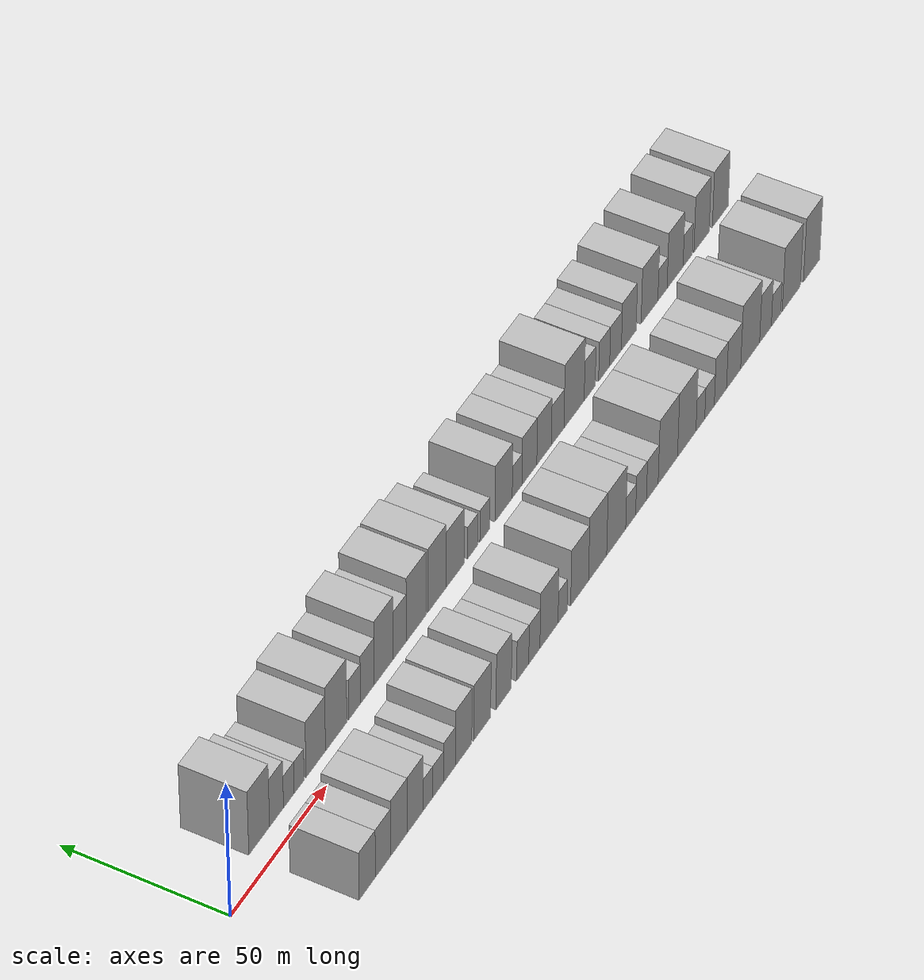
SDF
<sdf version="1.6">
 <world name="default">
  <scene>
   <sky><clouds><speed>12</speed></clouds></sky>
   <ambient>0.4 0.4 0.4 1</ambient>
   <background>0.7 0.7 0.7 1</background>
   <shadows>1</shadows>
  </scene>
  <gravity>0 0 -9.8066</gravity>
  <magnetic_field>6e-06 2.3e-05 -4.2e-05</magnetic_field>
  <physics default="0" name="default_physics" type="ode">
   <ode>
    <solver>
     <type>quick</type>
     <iters>10</iters>
     <sor>1.0</sor>
     <use_dynamic_moi_rescaling>0</use_dynamic_moi_rescaling>
    </solver>
    <constraints>
     <cfm>0</cfm>
     <erp>0.2</erp>
     <contact_max_correcting_vel>100</contact_max_correcting_vel>
     <contact_surface_layer>0.001</contact_surface_layer>
    </constraints>
   </ode>
   <max_step_size>0.004</max_step_size>
   <real_time_factor>1</real_time_factor>
   <real_time_update_rate>250</real_time_update_rate>
  </physics>
  <light name="sun" type="directional">
   <pose>0 0 10 0 0 0</pose>
   <diffuse>0.8 0.8 0.8 1</diffuse>
   <specular>0.2 0.2 0.2 1</specular>
   <attenuation>
    <range>1000</range>
    <constant>0.9</constant>
    <linear>0.01</linear>
    <quadratic>0.001</quadratic>
   </attenuation>
   <direction>-0.5 0.1 -0.9</direction>
  </light>
  <model name="building_1">
   <static>1</static>
   <pose>25.4195 16.0000 0 0.000000 0.000000 1.570796</pose>
   <link name="link">
    <pose>0 0 12.00 0 0 0</pose>
    <collision name="collision"><geometry><box><size>20.0000 10.8389 24.0000</size></box></geometry></collision>
    <visual name="visual">
     <cast_shadows>0</cast_shadows>
     <geometry><box><size>20.0000 10.8389 24.0000</size></box></geometry>
     <material>
      <script>
       <uri>model://HANNAS_wall/materials/scripts</uri>
       <uri>model://HANNAS_wall/materials/textures</uri>
       <name>vrc/HANNAS_wall</name>
      </script>
     </material>
    </visual>
   </link>
  </model>
  <model name="building_2">
   <static>1</static>
   <pose>34.4876 16.0000 0 0.000000 0.000000 1.570796</pose>
   <link name="link">
    <pose>0 0 9.00 0 0 0</pose>
    <collision name="collision"><geometry><box><size>20.0000 7.2974 18.0000</size></box></geometry></collision>
    <visual name="visual">
     <cast_shadows>0</cast_shadows>
     <geometry><box><size>20.0000 7.2974 18.0000</size></box></geometry>
     <material>
      <script>
       <uri>model://HANNAS_wall/materials/scripts</uri>
       <uri>model://HANNAS_wall/materials/textures</uri>
       <name>vrc/HANNAS_wall</name>
      </script>
     </material>
    </visual>
   </link>
  </model>
  <model name="building_3">
   <static>1</static>
   <pose>40.9584 16.0000 0 0.000000 0.000000 1.570796</pose>
   <link name="link">
    <pose>0 0 6.00 0 0 0</pose>
    <collision name="collision"><geometry><box><size>20.0000 5.6441 12.0000</size></box></geometry></collision>
    <visual name="visual">
     <cast_shadows>0</cast_shadows>
     <geometry><box><size>20.0000 5.6441 12.0000</size></box></geometry>
     <material>
      <script>
       <uri>model://HANNAS_wall/materials/scripts</uri>
       <uri>model://HANNAS_wall/materials/textures</uri>
       <name>vrc/HANNAS_wall</name>
      </script>
     </material>
    </visual>
   </link>
  </model>
  <model name="building_4">
   <static>1</static>
   <pose>46.4162 16.0000 0 0.000000 0.000000 1.570796</pose>
   <link name="link">
    <pose>0 0 6.00 0 0 0</pose>
    <collision name="collision"><geometry><box><size>20.0000 5.2715 12.0000</size></box></geometry></collision>
    <visual name="visual">
     <cast_shadows>0</cast_shadows>
     <geometry><box><size>20.0000 5.2715 12.0000</size></box></geometry>
     <material>
      <script>
       <uri>model://HANNAS_wall/materials/scripts</uri>
       <uri>model://HANNAS_wall/materials/textures</uri>
       <name>vrc/HANNAS_wall</name>
      </script>
     </material>
    </visual>
   </link>
  </model>
  <model name="building_5">
   <static>1</static>
   <pose>55.2350 16.0000 0 0.000000 0.000000 1.570796</pose>
   <link name="link">
    <pose>0 0 10.50 0 0 0</pose>
    <collision name="collision"><geometry><box><size>20.0000 10.3663 21.0000</size></box></geometry></collision>
    <visual name="visual">
     <cast_shadows>0</cast_shadows>
     <geometry><box><size>20.0000 10.3663 21.0000</size></box></geometry>
     <material>
      <script>
       <uri>model://HANNAS_wall/materials/scripts</uri>
       <uri>model://HANNAS_wall/materials/textures</uri>
       <name>vrc/HANNAS_wall</name>
      </script>
     </material>
    </visual>
   </link>
  </model>
  <model name="building_6">
   <static>1</static>
   <pose>66.1503 16.0000 0 0.000000 0.000000 1.570796</pose>
   <link name="link">
    <pose>0 0 12.00 0 0 0</pose>
    <collision name="collision"><geometry><box><size>20.0000 11.4643 24.0000</size></box></geometry></collision>
    <visual name="visual">
     <cast_shadows>0</cast_shadows>
     <geometry><box><size>20.0000 11.4643 24.0000</size></box></geometry>
     <material>
      <script>
       <uri>model://HANNAS_wall/materials/scripts</uri>
       <uri>model://HANNAS_wall/materials/textures</uri>
       <name>vrc/HANNAS_wall</name>
      </script>
     </material>
    </visual>
   </link>
  </model>
  <model name="building_7">
   <static>1</static>
   <pose>76.0640 16.0000 0 0.000000 0.000000 1.570796</pose>
   <link name="link">
    <pose>0 0 7.50 0 0 0</pose>
    <collision name="collision"><geometry><box><size>20.0000 6.3631 15.0000</size></box></geometry></collision>
    <visual name="visual">
     <cast_shadows>0</cast_shadows>
     <geometry><box><size>20.0000 6.3631 15.0000</size></box></geometry>
     <material>
      <script>
       <uri>model://HANNAS_wall/materials/scripts</uri>
       <uri>model://HANNAS_wall/materials/textures</uri>
       <name>vrc/HANNAS_wall</name>
      </script>
     </material>
    </visual>
   </link>
  </model>
  <model name="building_8">
   <static>1</static>
   <pose>82.9743 16.0000 0 0.000000 0.000000 1.570796</pose>
   <link name="link">
    <pose>0 0 9.00 0 0 0</pose>
    <collision name="collision"><geometry><box><size>20.0000 7.4576 18.0000</size></box></geometry></collision>
    <visual name="visual">
     <cast_shadows>0</cast_shadows>
     <geometry><box><size>20.0000 7.4576 18.0000</size></box></geometry>
     <material>
      <script>
       <uri>model://HANNAS_wall/materials/scripts</uri>
       <uri>model://HANNAS_wall/materials/textures</uri>
       <name>vrc/HANNAS_wall</name>
      </script>
     </material>
    </visual>
   </link>
  </model>
  <model name="building_9">
   <static>1</static>
   <pose>91.8453 16.0000 0 0.000000 0.000000 1.570796</pose>
   <link name="link">
    <pose>0 0 12.00 0 0 0</pose>
    <collision name="collision"><geometry><box><size>20.0000 10.2842 24.0000</size></box></geometry></collision>
    <visual name="visual">
     <cast_shadows>0</cast_shadows>
     <geometry><box><size>20.0000 10.2842 24.0000</size></box></geometry>
     <material>
      <script>
       <uri>model://HANNAS_wall/materials/scripts</uri>
       <uri>model://HANNAS_wall/materials/textures</uri>
       <name>vrc/HANNAS_wall</name>
      </script>
     </material>
    </visual>
   </link>
  </model>
  <model name="building_10">
   <static>1</static>
   <pose>100.6256 16.0000 0 0.000000 0.000000 1.570796</pose>
   <link name="link">
    <pose>0 0 9.00 0 0 0</pose>
    <collision name="collision"><geometry><box><size>20.0000 7.2764 18.0000</size></box></geometry></collision>
    <visual name="visual">
     <cast_shadows>0</cast_shadows>
     <geometry><box><size>20.0000 7.2764 18.0000</size></box></geometry>
     <material>
      <script>
       <uri>model://HANNAS_wall/materials/scripts</uri>
       <uri>model://HANNAS_wall/materials/textures</uri>
       <name>vrc/HANNAS_wall</name>
      </script>
     </material>
    </visual>
   </link>
  </model>
  <model name="building_11">
   <static>1</static>
   <pose>109.7319 16.0000 0 0.000000 0.000000 1.570796</pose>
   <link name="link">
    <pose>0 0 12.00 0 0 0</pose>
    <collision name="collision"><geometry><box><size>20.0000 10.9363 24.0000</size></box></geometry></collision>
    <visual name="visual">
     <cast_shadows>0</cast_shadows>
     <geometry><box><size>20.0000 10.9363 24.0000</size></box></geometry>
     <material>
      <script>
       <uri>model://HANNAS_wall/materials/scripts</uri>
       <uri>model://HANNAS_wall/materials/textures</uri>
       <name>vrc/HANNAS_wall</name>
      </script>
     </material>
    </visual>
   </link>
  </model>
  <model name="building_12">
   <static>1</static>
   <pose>121.3210 16.0000 0 0.000000 0.000000 1.570796</pose>
   <link name="link">
    <pose>0 0 12.00 0 0 0</pose>
    <collision name="collision"><geometry><box><size>20.0000 10.2417 24.0000</size></box></geometry></collision>
    <visual name="visual">
     <cast_shadows>0</cast_shadows>
     <geometry><box><size>20.0000 10.2417 24.0000</size></box></geometry>
     <material>
      <script>
       <uri>model://HANNAS_wall/materials/scripts</uri>
       <uri>model://HANNAS_wall/materials/textures</uri>
       <name>vrc/HANNAS_wall</name>
      </script>
     </material>
    </visual>
   </link>
  </model>
  <model name="building_13">
   <static>1</static>
   <pose>131.4453 16.0000 0 0.000000 0.000000 1.570796</pose>
   <link name="link">
    <pose>0 0 10.50 0 0 0</pose>
    <collision name="collision"><geometry><box><size>20.0000 10.0069 21.0000</size></box></geometry></collision>
    <visual name="visual">
     <cast_shadows>0</cast_shadows>
     <geometry><box><size>20.0000 10.0069 21.0000</size></box></geometry>
     <material>
      <script>
       <uri>model://HANNAS_wall/materials/scripts</uri>
       <uri>model://HANNAS_wall/materials/textures</uri>
       <name>vrc/HANNAS_wall</name>
      </script>
     </material>
    </visual>
   </link>
  </model>
  <model name="building_14">
   <static>1</static>
   <pose>141.3800 16.0000 0 0.000000 0.000000 1.570796</pose>
   <link name="link">
    <pose>0 0 6.00 0 0 0</pose>
    <collision name="collision"><geometry><box><size>20.0000 5.8627 12.0000</size></box></geometry></collision>
    <visual name="visual">
     <cast_shadows>0</cast_shadows>
     <geometry><box><size>20.0000 5.8627 12.0000</size></box></geometry>
     <material>
      <script>
       <uri>model://HANNAS_wall/materials/scripts</uri>
       <uri>model://HANNAS_wall/materials/textures</uri>
       <name>vrc/HANNAS_wall</name>
      </script>
     </material>
    </visual>
   </link>
  </model>
  <model name="building_15">
   <static>1</static>
   <pose>148.1402 16.0000 0 0.000000 0.000000 1.570796</pose>
   <link name="link">
    <pose>0 0 6.00 0 0 0</pose>
    <collision name="collision"><geometry><box><size>20.0000 5.6575 12.0000</size></box></geometry></collision>
    <visual name="visual">
     <cast_shadows>0</cast_shadows>
     <geometry><box><size>20.0000 5.6575 12.0000</size></box></geometry>
     <material>
      <script>
       <uri>model://HANNAS_wall/materials/scripts</uri>
       <uri>model://HANNAS_wall/materials/textures</uri>
       <name>vrc/HANNAS_wall</name>
      </script>
     </material>
    </visual>
   </link>
  </model>
  <model name="building_16">
   <static>1</static>
   <pose>158.8875 16.0000 0 0.000000 0.000000 1.570796</pose>
   <link name="link">
    <pose>0 0 10.50 0 0 0</pose>
    <collision name="collision"><geometry><box><size>20.0000 9.8371 21.0000</size></box></geometry></collision>
    <visual name="visual">
     <cast_shadows>0</cast_shadows>
     <geometry><box><size>20.0000 9.8371 21.0000</size></box></geometry>
     <material>
      <script>
       <uri>model://HANNAS_wall/materials/scripts</uri>
       <uri>model://HANNAS_wall/materials/textures</uri>
       <name>vrc/HANNAS_wall</name>
      </script>
     </material>
    </visual>
   </link>
  </model>
  <model name="building_17">
   <static>1</static>
   <pose>166.5775 16.0000 0 0.000000 0.000000 1.570796</pose>
   <link name="link">
    <pose>0 0 6.00 0 0 0</pose>
    <collision name="collision"><geometry><box><size>20.0000 5.5429 12.0000</size></box></geometry></collision>
    <visual name="visual">
     <cast_shadows>0</cast_shadows>
     <geometry><box><size>20.0000 5.5429 12.0000</size></box></geometry>
     <material>
      <script>
       <uri>model://HANNAS_wall/materials/scripts</uri>
       <uri>model://HANNAS_wall/materials/textures</uri>
       <name>vrc/HANNAS_wall</name>
      </script>
     </material>
    </visual>
   </link>
  </model>
  <model name="building_18">
   <static>1</static>
   <pose>173.6655 16.0000 0 0.000000 0.000000 1.570796</pose>
   <link name="link">
    <pose>0 0 9.00 0 0 0</pose>
    <collision name="collision"><geometry><box><size>20.0000 8.6331 18.0000</size></box></geometry></collision>
    <visual name="visual">
     <cast_shadows>0</cast_shadows>
     <geometry><box><size>20.0000 8.6331 18.0000</size></box></geometry>
     <material>
      <script>
       <uri>model://HANNAS_wall/materials/scripts</uri>
       <uri>model://HANNAS_wall/materials/textures</uri>
       <name>vrc/HANNAS_wall</name>
      </script>
     </material>
    </visual>
   </link>
  </model>
  <model name="building_19">
   <static>1</static>
   <pose>182.2064 16.0000 0 0.000000 0.000000 1.570796</pose>
   <link name="link">
    <pose>0 0 9.00 0 0 0</pose>
    <collision name="collision"><geometry><box><size>20.0000 8.4489 18.0000</size></box></geometry></collision>
    <visual name="visual">
     <cast_shadows>0</cast_shadows>
     <geometry><box><size>20.0000 8.4489 18.0000</size></box></geometry>
     <material>
      <script>
       <uri>model://HANNAS_wall/materials/scripts</uri>
       <uri>model://HANNAS_wall/materials/textures</uri>
       <name>vrc/HANNAS_wall</name>
      </script>
     </material>
    </visual>
   </link>
  </model>
  <model name="building_20">
   <static>1</static>
   <pose>190.1154 16.0000 0 0.000000 0.000000 1.570796</pose>
   <link name="link">
    <pose>0 0 7.50 0 0 0</pose>
    <collision name="collision"><geometry><box><size>20.0000 7.3691 15.0000</size></box></geometry></collision>
    <visual name="visual">
     <cast_shadows>0</cast_shadows>
     <geometry><box><size>20.0000 7.3691 15.0000</size></box></geometry>
     <material>
      <script>
       <uri>model://HANNAS_wall/materials/scripts</uri>
       <uri>model://HANNAS_wall/materials/textures</uri>
       <name>vrc/HANNAS_wall</name>
      </script>
     </material>
    </visual>
   </link>
  </model>
  <model name="building_21">
   <static>1</static>
   <pose>199.7422 16.0000 0 0.000000 0.000000 1.570796</pose>
   <link name="link">
    <pose>0 0 12.00 0 0 0</pose>
    <collision name="collision"><geometry><box><size>20.0000 11.8844 24.0000</size></box></geometry></collision>
    <visual name="visual">
     <cast_shadows>0</cast_shadows>
     <geometry><box><size>20.0000 11.8844 24.0000</size></box></geometry>
     <material>
      <script>
       <uri>model://HANNAS_wall/materials/scripts</uri>
       <uri>model://HANNAS_wall/materials/textures</uri>
       <name>vrc/HANNAS_wall</name>
      </script>
     </material>
    </visual>
   </link>
  </model>
  <model name="building_22">
   <static>1</static>
   <pose>208.9534 16.0000 0 0.000000 0.000000 1.570796</pose>
   <link name="link">
    <pose>0 0 7.50 0 0 0</pose>
    <collision name="collision"><geometry><box><size>20.0000 6.5379 15.0000</size></box></geometry></collision>
    <visual name="visual">
     <cast_shadows>0</cast_shadows>
     <geometry><box><size>20.0000 6.5379 15.0000</size></box></geometry>
     <material>
      <script>
       <uri>model://HANNAS_wall/materials/scripts</uri>
       <uri>model://HANNAS_wall/materials/textures</uri>
       <name>vrc/HANNAS_wall</name>
      </script>
     </material>
    </visual>
   </link>
  </model>
  <model name="building_23">
   <static>1</static>
   <pose>217.5202 16.0000 0 0.000000 0.000000 1.570796</pose>
   <link name="link">
    <pose>0 0 7.50 0 0 0</pose>
    <collision name="collision"><geometry><box><size>20.0000 6.5957 15.0000</size></box></geometry></collision>
    <visual name="visual">
     <cast_shadows>0</cast_shadows>
     <geometry><box><size>20.0000 6.5957 15.0000</size></box></geometry>
     <material>
      <script>
       <uri>model://HANNAS_wall/materials/scripts</uri>
       <uri>model://HANNAS_wall/materials/textures</uri>
       <name>vrc/HANNAS_wall</name>
      </script>
     </material>
    </visual>
   </link>
  </model>
  <model name="building_24">
   <static>1</static>
   <pose>224.3153 16.0000 0 0.000000 0.000000 1.570796</pose>
   <link name="link">
    <pose>0 0 7.50 0 0 0</pose>
    <collision name="collision"><geometry><box><size>20.0000 6.9945 15.0000</size></box></geometry></collision>
    <visual name="visual">
     <cast_shadows>0</cast_shadows>
     <geometry><box><size>20.0000 6.9945 15.0000</size></box></geometry>
     <material>
      <script>
       <uri>model://HANNAS_wall/materials/scripts</uri>
       <uri>model://HANNAS_wall/materials/textures</uri>
       <name>vrc/HANNAS_wall</name>
      </script>
     </material>
    </visual>
   </link>
  </model>
  <model name="building_25">
   <static>1</static>
   <pose>232.2512 16.0000 0 0.000000 0.000000 1.570796</pose>
   <link name="link">
    <pose>0 0 9.00 0 0 0</pose>
    <collision name="collision"><geometry><box><size>20.0000 8.8774 18.0000</size></box></geometry></collision>
    <visual name="visual">
     <cast_shadows>0</cast_shadows>
     <geometry><box><size>20.0000 8.8774 18.0000</size></box></geometry>
     <material>
      <script>
       <uri>model://HANNAS_wall/materials/scripts</uri>
       <uri>model://HANNAS_wall/materials/textures</uri>
       <name>vrc/HANNAS_wall</name>
      </script>
     </material>
    </visual>
   </link>
  </model>
  <model name="building_26">
   <static>1</static>
   <pose>244.7805 16.0000 0 0.000000 0.000000 1.570796</pose>
   <link name="link">
    <pose>0 0 10.50 0 0 0</pose>
    <collision name="collision"><geometry><box><size>20.0000 10.1812 21.0000</size></box></geometry></collision>
    <visual name="visual">
     <cast_shadows>0</cast_shadows>
     <geometry><box><size>20.0000 10.1812 21.0000</size></box></geometry>
     <material>
      <script>
       <uri>model://HANNAS_wall/materials/scripts</uri>
       <uri>model://HANNAS_wall/materials/textures</uri>
       <name>vrc/HANNAS_wall</name>
      </script>
     </material>
    </visual>
   </link>
  </model>
  <model name="building_27">
   <static>1</static>
   <pose>252.6764 16.0000 0 0.000000 0.000000 1.570796</pose>
   <link name="link">
    <pose>0 0 6.00 0 0 0</pose>
    <collision name="collision"><geometry><box><size>20.0000 5.6105 12.0000</size></box></geometry></collision>
    <visual name="visual">
     <cast_shadows>0</cast_shadows>
     <geometry><box><size>20.0000 5.6105 12.0000</size></box></geometry>
     <material>
      <script>
       <uri>model://HANNAS_wall/materials/scripts</uri>
       <uri>model://HANNAS_wall/materials/textures</uri>
       <name>vrc/HANNAS_wall</name>
      </script>
     </material>
    </visual>
   </link>
  </model>
  <model name="building_28">
   <static>1</static>
   <pose>260.3763 16.0000 0 0.000000 0.000000 1.570796</pose>
   <link name="link">
    <pose>0 0 10.50 0 0 0</pose>
    <collision name="collision"><geometry><box><size>20.0000 9.7892 21.0000</size></box></geometry></collision>
    <visual name="visual">
     <cast_shadows>0</cast_shadows>
     <geometry><box><size>20.0000 9.7892 21.0000</size></box></geometry>
     <material>
      <script>
       <uri>model://HANNAS_wall/materials/scripts</uri>
       <uri>model://HANNAS_wall/materials/textures</uri>
       <name>vrc/HANNAS_wall</name>
      </script>
     </material>
    </visual>
   </link>
  </model>
  <model name="building_29">
   <static>1</static>
   <pose>268.1109 16.0000 0 0.000000 0.000000 1.570796</pose>
   <link name="link">
    <pose>0 0 6.00 0 0 0</pose>
    <collision name="collision"><geometry><box><size>20.0000 5.6800 12.0000</size></box></geometry></collision>
    <visual name="visual">
     <cast_shadows>0</cast_shadows>
     <geometry><box><size>20.0000 5.6800 12.0000</size></box></geometry>
     <material>
      <script>
       <uri>model://HANNAS_wall/materials/scripts</uri>
       <uri>model://HANNAS_wall/materials/textures</uri>
       <name>vrc/HANNAS_wall</name>
      </script>
     </material>
    </visual>
   </link>
  </model>
  <model name="building_30">
   <static>1</static>
   <pose>276.6648 16.0000 0 0.000000 0.000000 1.570796</pose>
   <link name="link">
    <pose>0 0 10.50 0 0 0</pose>
    <collision name="collision"><geometry><box><size>20.0000 9.4278 21.0000</size></box></geometry></collision>
    <visual name="visual">
     <cast_shadows>0</cast_shadows>
     <geometry><box><size>20.0000 9.4278 21.0000</size></box></geometry>
     <material>
      <script>
       <uri>model://HANNAS_wall/materials/scripts</uri>
       <uri>model://HANNAS_wall/materials/textures</uri>
       <name>vrc/HANNAS_wall</name>
      </script>
     </material>
    </visual>
   </link>
  </model>
  <model name="building_31">
   <static>1</static>
   <pose>288.3045 16.0000 0 0.000000 0.000000 1.570796</pose>
   <link name="link">
    <pose>0 0 10.50 0 0 0</pose>
    <collision name="collision"><geometry><box><size>20.0000 9.8517 21.0000</size></box></geometry></collision>
    <visual name="visual">
     <cast_shadows>0</cast_shadows>
     <geometry><box><size>20.0000 9.8517 21.0000</size></box></geometry>
     <material>
      <script>
       <uri>model://HANNAS_wall/materials/scripts</uri>
       <uri>model://HANNAS_wall/materials/textures</uri>
       <name>vrc/HANNAS_wall</name>
      </script>
     </material>
    </visual>
   </link>
  </model>
  <model name="building_32">
   <static>1</static>
   <pose>24.3452 -16.0000 0 0.000000 0.000000 1.570796</pose>
   <link name="link">
    <pose>0 0 9.00 0 0 0</pose>
    <collision name="collision"><geometry><box><size>20.0000 8.6905 18.0000</size></box></geometry></collision>
    <visual name="visual">
     <cast_shadows>0</cast_shadows>
     <geometry><box><size>20.0000 8.6905 18.0000</size></box></geometry>
     <material>
      <script>
       <uri>model://HANNAS_wall/materials/scripts</uri>
       <uri>model://HANNAS_wall/materials/textures</uri>
       <name>vrc/HANNAS_wall</name>
      </script>
     </material>
    </visual>
   </link>
  </model>
  <model name="building_33">
   <static>1</static>
   <pose>32.7283 -16.0000 0 0.000000 0.000000 1.570796</pose>
   <link name="link">
    <pose>0 0 9.00 0 0 0</pose>
    <collision name="collision"><geometry><box><size>20.0000 8.0757 18.0000</size></box></geometry></collision>
    <visual name="visual">
     <cast_shadows>0</cast_shadows>
     <geometry><box><size>20.0000 8.0757 18.0000</size></box></geometry>
     <material>
      <script>
       <uri>model://HANNAS_wall/materials/scripts</uri>
       <uri>model://HANNAS_wall/materials/textures</uri>
       <name>vrc/HANNAS_wall</name>
      </script>
     </material>
    </visual>
   </link>
  </model>
  <model name="building_34">
   <static>1</static>
   <pose>41.2370 -16.0000 0 0.000000 0.000000 1.570796</pose>
   <link name="link">
    <pose>0 0 10.50 0 0 0</pose>
    <collision name="collision"><geometry><box><size>20.0000 8.9416 21.0000</size></box></geometry></collision>
    <visual name="visual">
     <cast_shadows>0</cast_shadows>
     <geometry><box><size>20.0000 8.9416 21.0000</size></box></geometry>
     <material>
      <script>
       <uri>model://HANNAS_wall/materials/scripts</uri>
       <uri>model://HANNAS_wall/materials/textures</uri>
       <name>vrc/HANNAS_wall</name>
      </script>
     </material>
    </visual>
   </link>
  </model>
  <model name="building_35">
   <static>1</static>
   <pose>50.0134 -16.0000 0 0.000000 0.000000 1.570796</pose>
   <link name="link">
    <pose>0 0 10.50 0 0 0</pose>
    <collision name="collision"><geometry><box><size>20.0000 8.6113 21.0000</size></box></geometry></collision>
    <visual name="visual">
     <cast_shadows>0</cast_shadows>
     <geometry><box><size>20.0000 8.6113 21.0000</size></box></geometry>
     <material>
      <script>
       <uri>model://HANNAS_wall/materials/scripts</uri>
       <uri>model://HANNAS_wall/materials/textures</uri>
       <name>vrc/HANNAS_wall</name>
      </script>
     </material>
    </visual>
   </link>
  </model>
  <model name="building_36">
   <static>1</static>
   <pose>56.8525 -16.0000 0 0.000000 0.000000 1.570796</pose>
   <link name="link">
    <pose>0 0 6.00 0 0 0</pose>
    <collision name="collision"><geometry><box><size>20.0000 5.0669 12.0000</size></box></geometry></collision>
    <visual name="visual">
     <cast_shadows>0</cast_shadows>
     <geometry><box><size>20.0000 5.0669 12.0000</size></box></geometry>
     <material>
      <script>
       <uri>model://HANNAS_wall/materials/scripts</uri>
       <uri>model://HANNAS_wall/materials/textures</uri>
       <name>vrc/HANNAS_wall</name>
      </script>
     </material>
    </visual>
   </link>
  </model>
  <model name="building_37">
   <static>1</static>
   <pose>62.3425 -16.0000 0 0.000000 0.000000 1.570796</pose>
   <link name="link">
    <pose>0 0 6.00 0 0 0</pose>
    <collision name="collision"><geometry><box><size>20.0000 5.9130 12.0000</size></box></geometry></collision>
    <visual name="visual">
     <cast_shadows>0</cast_shadows>
     <geometry><box><size>20.0000 5.9130 12.0000</size></box></geometry>
     <material>
      <script>
       <uri>model://HANNAS_wall/materials/scripts</uri>
       <uri>model://HANNAS_wall/materials/textures</uri>
       <name>vrc/HANNAS_wall</name>
      </script>
     </material>
    </visual>
   </link>
  </model>
  <model name="building_38">
   <static>1</static>
   <pose>68.4736 -16.0000 0 0.000000 0.000000 1.570796</pose>
   <link name="link">
    <pose>0 0 7.50 0 0 0</pose>
    <collision name="collision"><geometry><box><size>20.0000 6.3492 15.0000</size></box></geometry></collision>
    <visual name="visual">
     <cast_shadows>0</cast_shadows>
     <geometry><box><size>20.0000 6.3492 15.0000</size></box></geometry>
     <material>
      <script>
       <uri>model://HANNAS_wall/materials/scripts</uri>
       <uri>model://HANNAS_wall/materials/textures</uri>
       <name>vrc/HANNAS_wall</name>
      </script>
     </material>
    </visual>
   </link>
  </model>
  <model name="building_39">
   <static>1</static>
   <pose>76.1599 -16.0000 0 0.000000 0.000000 1.570796</pose>
   <link name="link">
    <pose>0 0 10.50 0 0 0</pose>
    <collision name="collision"><geometry><box><size>20.0000 9.0234 21.0000</size></box></geometry></collision>
    <visual name="visual">
     <cast_shadows>0</cast_shadows>
     <geometry><box><size>20.0000 9.0234 21.0000</size></box></geometry>
     <material>
      <script>
       <uri>model://HANNAS_wall/materials/scripts</uri>
       <uri>model://HANNAS_wall/materials/textures</uri>
       <name>vrc/HANNAS_wall</name>
      </script>
     </material>
    </visual>
   </link>
  </model>
  <model name="building_40">
   <static>1</static>
   <pose>86.3869 -16.0000 0 0.000000 0.000000 1.570796</pose>
   <link name="link">
    <pose>0 0 10.50 0 0 0</pose>
    <collision name="collision"><geometry><box><size>20.0000 9.4306 21.0000</size></box></geometry></collision>
    <visual name="visual">
     <cast_shadows>0</cast_shadows>
     <geometry><box><size>20.0000 9.4306 21.0000</size></box></geometry>
     <material>
      <script>
       <uri>model://HANNAS_wall/materials/scripts</uri>
       <uri>model://HANNAS_wall/materials/textures</uri>
       <name>vrc/HANNAS_wall</name>
      </script>
     </material>
    </visual>
   </link>
  </model>
  <model name="building_41">
   <static>1</static>
   <pose>98.3394 -16.0000 0 0.000000 0.000000 1.570796</pose>
   <link name="link">
    <pose>0 0 10.50 0 0 0</pose>
    <collision name="collision"><geometry><box><size>20.0000 8.4745 21.0000</size></box></geometry></collision>
    <visual name="visual">
     <cast_shadows>0</cast_shadows>
     <geometry><box><size>20.0000 8.4745 21.0000</size></box></geometry>
     <material>
      <script>
       <uri>model://HANNAS_wall/materials/scripts</uri>
       <uri>model://HANNAS_wall/materials/textures</uri>
       <name>vrc/HANNAS_wall</name>
      </script>
     </material>
    </visual>
   </link>
  </model>
  <model name="building_42">
   <static>1</static>
   <pose>108.9622 -16.0000 0 0.000000 0.000000 1.570796</pose>
   <link name="link">
    <pose>0 0 7.50 0 0 0</pose>
    <collision name="collision"><geometry><box><size>20.0000 6.7711 15.0000</size></box></geometry></collision>
    <visual name="visual">
     <cast_shadows>0</cast_shadows>
     <geometry><box><size>20.0000 6.7711 15.0000</size></box></geometry>
     <material>
      <script>
       <uri>model://HANNAS_wall/materials/scripts</uri>
       <uri>model://HANNAS_wall/materials/textures</uri>
       <name>vrc/HANNAS_wall</name>
      </script>
     </material>
    </visual>
   </link>
  </model>
  <model name="building_43">
   <static>1</static>
   <pose>115.4851 -16.0000 0 0.000000 0.000000 1.570796</pose>
   <link name="link">
    <pose>0 0 7.50 0 0 0</pose>
    <collision name="collision"><geometry><box><size>20.0000 6.2745 15.0000</size></box></geometry></collision>
    <visual name="visual">
     <cast_shadows>0</cast_shadows>
     <geometry><box><size>20.0000 6.2745 15.0000</size></box></geometry>
     <material>
      <script>
       <uri>model://HANNAS_wall/materials/scripts</uri>
       <uri>model://HANNAS_wall/materials/textures</uri>
       <name>vrc/HANNAS_wall</name>
      </script>
     </material>
    </visual>
   </link>
  </model>
  <model name="building_44">
   <static>1</static>
   <pose>123.7631 -16.0000 0 0.000000 0.000000 1.570796</pose>
   <link name="link">
    <pose>0 0 10.50 0 0 0</pose>
    <collision name="collision"><geometry><box><size>20.0000 10.2815 21.0000</size></box></geometry></collision>
    <visual name="visual">
     <cast_shadows>0</cast_shadows>
     <geometry><box><size>20.0000 10.2815 21.0000</size></box></geometry>
     <material>
      <script>
       <uri>model://HANNAS_wall/materials/scripts</uri>
       <uri>model://HANNAS_wall/materials/textures</uri>
       <name>vrc/HANNAS_wall</name>
      </script>
     </material>
    </visual>
   </link>
  </model>
  <model name="building_45">
   <static>1</static>
   <pose>131.5101 -16.0000 0 0.000000 0.000000 1.570796</pose>
   <link name="link">
    <pose>0 0 6.00 0 0 0</pose>
    <collision name="collision"><geometry><box><size>20.0000 5.2125 12.0000</size></box></geometry></collision>
    <visual name="visual">
     <cast_shadows>0</cast_shadows>
     <geometry><box><size>20.0000 5.2125 12.0000</size></box></geometry>
     <material>
      <script>
       <uri>model://HANNAS_wall/materials/scripts</uri>
       <uri>model://HANNAS_wall/materials/textures</uri>
       <name>vrc/HANNAS_wall</name>
      </script>
     </material>
    </visual>
   </link>
  </model>
  <model name="building_46">
   <static>1</static>
   <pose>141.2276 -16.0000 0 0.000000 0.000000 1.570796</pose>
   <link name="link">
    <pose>0 0 10.50 0 0 0</pose>
    <collision name="collision"><geometry><box><size>20.0000 10.2225 21.0000</size></box></geometry></collision>
    <visual name="visual">
     <cast_shadows>0</cast_shadows>
     <geometry><box><size>20.0000 10.2225 21.0000</size></box></geometry>
     <material>
      <script>
       <uri>model://HANNAS_wall/materials/scripts</uri>
       <uri>model://HANNAS_wall/materials/textures</uri>
       <name>vrc/HANNAS_wall</name>
      </script>
     </material>
    </visual>
   </link>
  </model>
  <model name="building_47">
   <static>1</static>
   <pose>151.5773 -16.0000 0 0.000000 0.000000 1.570796</pose>
   <link name="link">
    <pose>0 0 12.00 0 0 0</pose>
    <collision name="collision"><geometry><box><size>20.0000 10.4769 24.0000</size></box></geometry></collision>
    <visual name="visual">
     <cast_shadows>0</cast_shadows>
     <geometry><box><size>20.0000 10.4769 24.0000</size></box></geometry>
     <material>
      <script>
       <uri>model://HANNAS_wall/materials/scripts</uri>
       <uri>model://HANNAS_wall/materials/textures</uri>
       <name>vrc/HANNAS_wall</name>
      </script>
     </material>
    </visual>
   </link>
  </model>
  <model name="building_48">
   <static>1</static>
   <pose>162.3619 -16.0000 0 0.000000 0.000000 1.570796</pose>
   <link name="link">
    <pose>0 0 12.00 0 0 0</pose>
    <collision name="collision"><geometry><box><size>20.0000 11.0923 24.0000</size></box></geometry></collision>
    <visual name="visual">
     <cast_shadows>0</cast_shadows>
     <geometry><box><size>20.0000 11.0923 24.0000</size></box></geometry>
     <material>
      <script>
       <uri>model://HANNAS_wall/materials/scripts</uri>
       <uri>model://HANNAS_wall/materials/textures</uri>
       <name>vrc/HANNAS_wall</name>
      </script>
     </material>
    </visual>
   </link>
  </model>
  <model name="building_49">
   <static>1</static>
   <pose>170.8178 -16.0000 0 0.000000 0.000000 1.570796</pose>
   <link name="link">
    <pose>0 0 6.00 0 0 0</pose>
    <collision name="collision"><geometry><box><size>20.0000 5.8196 12.0000</size></box></geometry></collision>
    <visual name="visual">
     <cast_shadows>0</cast_shadows>
     <geometry><box><size>20.0000 5.8196 12.0000</size></box></geometry>
     <material>
      <script>
       <uri>model://HANNAS_wall/materials/scripts</uri>
       <uri>model://HANNAS_wall/materials/textures</uri>
       <name>vrc/HANNAS_wall</name>
      </script>
     </material>
    </visual>
   </link>
  </model>
  <model name="building_50">
   <static>1</static>
   <pose>176.8990 -16.0000 0 0.000000 0.000000 1.570796</pose>
   <link name="link">
    <pose>0 0 7.50 0 0 0</pose>
    <collision name="collision"><geometry><box><size>20.0000 6.3428 15.0000</size></box></geometry></collision>
    <visual name="visual">
     <cast_shadows>0</cast_shadows>
     <geometry><box><size>20.0000 6.3428 15.0000</size></box></geometry>
     <material>
      <script>
       <uri>model://HANNAS_wall/materials/scripts</uri>
       <uri>model://HANNAS_wall/materials/textures</uri>
       <name>vrc/HANNAS_wall</name>
      </script>
     </material>
    </visual>
   </link>
  </model>
  <model name="building_51">
   <static>1</static>
   <pose>183.5298 -16.0000 0 0.000000 0.000000 1.570796</pose>
   <link name="link">
    <pose>0 0 7.50 0 0 0</pose>
    <collision name="collision"><geometry><box><size>20.0000 6.9188 15.0000</size></box></geometry></collision>
    <visual name="visual">
     <cast_shadows>0</cast_shadows>
     <geometry><box><size>20.0000 6.9188 15.0000</size></box></geometry>
     <material>
      <script>
       <uri>model://HANNAS_wall/materials/scripts</uri>
       <uri>model://HANNAS_wall/materials/textures</uri>
       <name>vrc/HANNAS_wall</name>
      </script>
     </material>
    </visual>
   </link>
  </model>
  <model name="building_52">
   <static>1</static>
   <pose>192.7536 -16.0000 0 0.000000 0.000000 1.570796</pose>
   <link name="link">
    <pose>0 0 12.00 0 0 0</pose>
    <collision name="collision"><geometry><box><size>20.0000 11.5287 24.0000</size></box></geometry></collision>
    <visual name="visual">
     <cast_shadows>0</cast_shadows>
     <geometry><box><size>20.0000 11.5287 24.0000</size></box></geometry>
     <material>
      <script>
       <uri>model://HANNAS_wall/materials/scripts</uri>
       <uri>model://HANNAS_wall/materials/textures</uri>
       <name>vrc/HANNAS_wall</name>
      </script>
     </material>
    </visual>
   </link>
  </model>
  <model name="building_53">
   <static>1</static>
   <pose>204.0426 -16.0000 0 0.000000 0.000000 1.570796</pose>
   <link name="link">
    <pose>0 0 12.00 0 0 0</pose>
    <collision name="collision"><geometry><box><size>20.0000 11.0494 24.0000</size></box></geometry></collision>
    <visual name="visual">
     <cast_shadows>0</cast_shadows>
     <geometry><box><size>20.0000 11.0494 24.0000</size></box></geometry>
     <material>
      <script>
       <uri>model://HANNAS_wall/materials/scripts</uri>
       <uri>model://HANNAS_wall/materials/textures</uri>
       <name>vrc/HANNAS_wall</name>
      </script>
     </material>
    </visual>
   </link>
  </model>
  <model name="building_54">
   <static>1</static>
   <pose>212.2116 -16.0000 0 0.000000 0.000000 1.570796</pose>
   <link name="link">
    <pose>0 0 6.00 0 0 0</pose>
    <collision name="collision"><geometry><box><size>20.0000 5.2885 12.0000</size></box></geometry></collision>
    <visual name="visual">
     <cast_shadows>0</cast_shadows>
     <geometry><box><size>20.0000 5.2885 12.0000</size></box></geometry>
     <material>
      <script>
       <uri>model://HANNAS_wall/materials/scripts</uri>
       <uri>model://HANNAS_wall/materials/textures</uri>
       <name>vrc/HANNAS_wall</name>
      </script>
     </material>
    </visual>
   </link>
  </model>
  <model name="building_55">
   <static>1</static>
   <pose>217.7366 -16.0000 0 0.000000 0.000000 1.570796</pose>
   <link name="link">
    <pose>0 0 6.00 0 0 0</pose>
    <collision name="collision"><geometry><box><size>20.0000 5.7615 12.0000</size></box></geometry></collision>
    <visual name="visual">
     <cast_shadows>0</cast_shadows>
     <geometry><box><size>20.0000 5.7615 12.0000</size></box></geometry>
     <material>
      <script>
       <uri>model://HANNAS_wall/materials/scripts</uri>
       <uri>model://HANNAS_wall/materials/textures</uri>
       <name>vrc/HANNAS_wall</name>
      </script>
     </material>
    </visual>
   </link>
  </model>
  <model name="building_56">
   <static>1</static>
   <pose>224.3309 -16.0000 0 0.000000 0.000000 1.570796</pose>
   <link name="link">
    <pose>0 0 9.00 0 0 0</pose>
    <collision name="collision"><geometry><box><size>20.0000 7.4270 18.0000</size></box></geometry></collision>
    <visual name="visual">
     <cast_shadows>0</cast_shadows>
     <geometry><box><size>20.0000 7.4270 18.0000</size></box></geometry>
     <material>
      <script>
       <uri>model://HANNAS_wall/materials/scripts</uri>
       <uri>model://HANNAS_wall/materials/textures</uri>
       <name>vrc/HANNAS_wall</name>
      </script>
     </material>
    </visual>
   </link>
  </model>
  <model name="building_57">
   <static>1</static>
   <pose>232.3517 -16.0000 0 0.000000 0.000000 1.570796</pose>
   <link name="link">
    <pose>0 0 9.00 0 0 0</pose>
    <collision name="collision"><geometry><box><size>20.0000 8.6147 18.0000</size></box></geometry></collision>
    <visual name="visual">
     <cast_shadows>0</cast_shadows>
     <geometry><box><size>20.0000 8.6147 18.0000</size></box></geometry>
     <material>
      <script>
       <uri>model://HANNAS_wall/materials/scripts</uri>
       <uri>model://HANNAS_wall/materials/textures</uri>
       <name>vrc/HANNAS_wall</name>
      </script>
     </material>
    </visual>
   </link>
  </model>
  <model name="building_58">
   <static>1</static>
   <pose>242.4959 -16.0000 0 0.000000 0.000000 1.570796</pose>
   <link name="link">
    <pose>0 0 12.00 0 0 0</pose>
    <collision name="collision"><geometry><box><size>20.0000 11.6737 24.0000</size></box></geometry></collision>
    <visual name="visual">
     <cast_shadows>0</cast_shadows>
     <geometry><box><size>20.0000 11.6737 24.0000</size></box></geometry>
     <material>
      <script>
       <uri>model://HANNAS_wall/materials/scripts</uri>
       <uri>model://HANNAS_wall/materials/textures</uri>
       <name>vrc/HANNAS_wall</name>
      </script>
     </material>
    </visual>
   </link>
  </model>
  <model name="building_59">
   <static>1</static>
   <pose>251.9537 -16.0000 0 0.000000 0.000000 1.570796</pose>
   <link name="link">
    <pose>0 0 9.00 0 0 0</pose>
    <collision name="collision"><geometry><box><size>20.0000 7.2419 18.0000</size></box></geometry></collision>
    <visual name="visual">
     <cast_shadows>0</cast_shadows>
     <geometry><box><size>20.0000 7.2419 18.0000</size></box></geometry>
     <material>
      <script>
       <uri>model://HANNAS_wall/materials/scripts</uri>
       <uri>model://HANNAS_wall/materials/textures</uri>
       <name>vrc/HANNAS_wall</name>
      </script>
     </material>
    </visual>
   </link>
  </model>
  <model name="building_60">
   <static>1</static>
   <pose>258.4846 -16.0000 0 0.000000 0.000000 1.570796</pose>
   <link name="link">
    <pose>0 0 6.00 0 0 0</pose>
    <collision name="collision"><geometry><box><size>20.0000 5.8199 12.0000</size></box></geometry></collision>
    <visual name="visual">
     <cast_shadows>0</cast_shadows>
     <geometry><box><size>20.0000 5.8199 12.0000</size></box></geometry>
     <material>
      <script>
       <uri>model://HANNAS_wall/materials/scripts</uri>
       <uri>model://HANNAS_wall/materials/textures</uri>
       <name>vrc/HANNAS_wall</name>
      </script>
     </material>
    </visual>
   </link>
  </model>
  <model name="building_61">
   <static>1</static>
   <pose>268.0100 -16.0000 0 0.000000 0.000000 1.570796</pose>
   <link name="link">
    <pose>0 0 12.00 0 0 0</pose>
    <collision name="collision"><geometry><box><size>20.0000 11.2309 24.0000</size></box></geometry></collision>
    <visual name="visual">
     <cast_shadows>0</cast_shadows>
     <geometry><box><size>20.0000 11.2309 24.0000</size></box></geometry>
     <material>
      <script>
       <uri>model://HANNAS_wall/materials/scripts</uri>
       <uri>model://HANNAS_wall/materials/textures</uri>
       <name>vrc/HANNAS_wall</name>
      </script>
     </material>
    </visual>
   </link>
  </model>
  <model name="building_62">
   <static>1</static>
   <pose>280.7325 -16.0000 0 0.000000 0.000000 1.570796</pose>
   <link name="link">
    <pose>0 0 12.00 0 0 0</pose>
    <collision name="collision"><geometry><box><size>20.0000 10.2141 24.0000</size></box></geometry></collision>
    <visual name="visual">
     <cast_shadows>0</cast_shadows>
     <geometry><box><size>20.0000 10.2141 24.0000</size></box></geometry>
     <material>
      <script>
       <uri>model://HANNAS_wall/materials/scripts</uri>
       <uri>model://HANNAS_wall/materials/textures</uri>
       <name>vrc/HANNAS_wall</name>
      </script>
     </material>
    </visual>
   </link>
  </model>
 </world>
</sdf>
